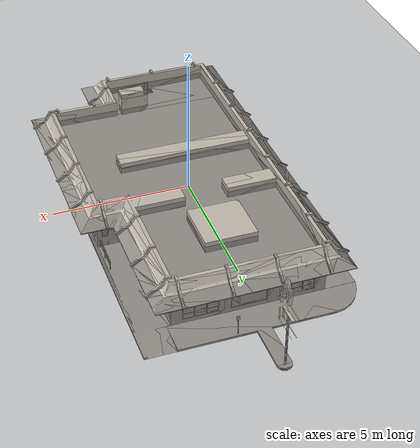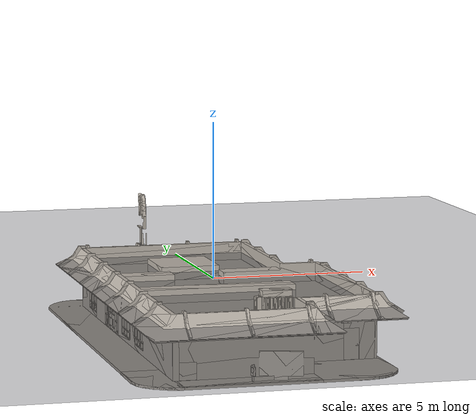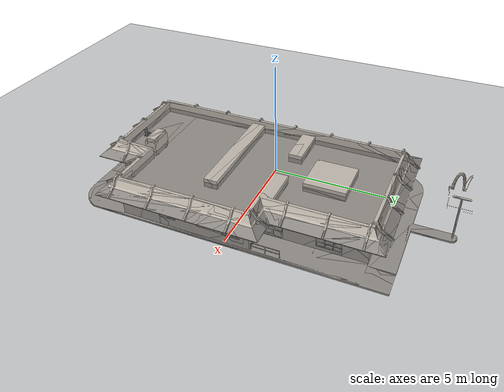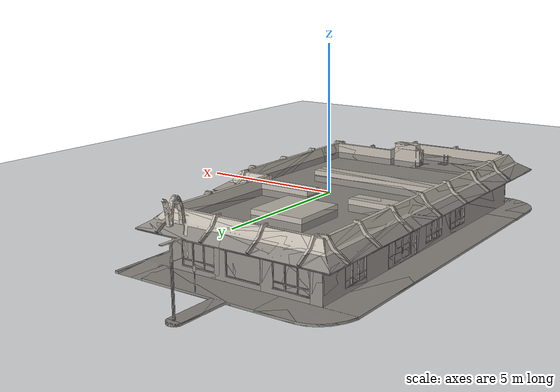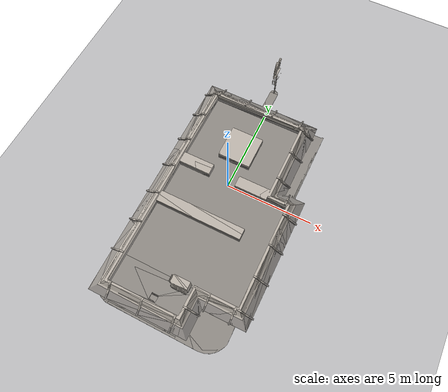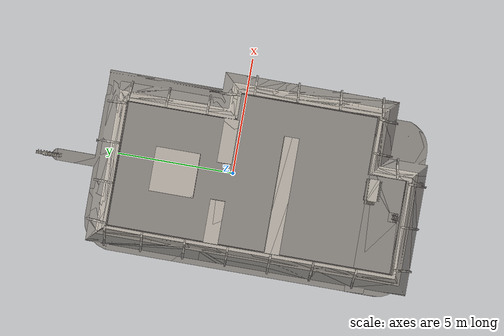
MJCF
<mujoco model="mcdonalds_restaurant_preview">
  <compiler angle="radian" meshdir="assets/mcdonalds/meshes" texturedir="assets/mcdonalds/textures"/>
  <option timestep="0.002" gravity="0 0 -9.81"/>
  <visual>
    <headlight diffuse="0.75 0.75 0.72" ambient="0.38 0.36 0.34"/>
    <rgba haze="0.05 0.05 0.05 1"/>
  </visual>
  <asset>
    <mesh name="mcd_rest_mesh00" file="mcd_rest_m00.stl"/>
    <mesh name="mcd_rest_mesh01" file="mcd_rest_m01.stl"/>
    <mesh name="mcd_rest_mesh02" file="mcd_rest_m02.obj"/>
    <texture name="mcd_rest_tex02" type="2d" file="mcd_rest_t02.png"/>
    <material name="mcd_rest_mat02" texture="mcd_rest_tex02" reflectance="0.5" specular="0.5" shininess="0.5"/>
    <mesh name="mcd_rest_mesh03" file="mcd_rest_m03.obj"/>
    <texture name="mcd_rest_tex03" type="2d" file="mcd_rest_t03.png"/>
    <material name="mcd_rest_mat03" texture="mcd_rest_tex03" reflectance="0.5" specular="0.5" shininess="0.5"/>
    <mesh name="mcd_rest_mesh04" file="mcd_rest_m04.obj"/>
    <texture name="mcd_rest_tex04" type="2d" file="mcd_rest_t04.png"/>
    <material name="mcd_rest_mat04" texture="mcd_rest_tex04" reflectance="0.5" specular="0.5" shininess="0.5"/>
    <mesh name="mcd_rest_mesh05" file="mcd_rest_m05.obj"/>
    <texture name="mcd_rest_tex05" type="2d" file="mcd_rest_t05.png"/>
    <material name="mcd_rest_mat05" texture="mcd_rest_tex05" reflectance="0.5" specular="0.5" shininess="0.5"/>
    <mesh name="mcd_rest_mesh06" file="mcd_rest_m06.obj"/>
    <texture name="mcd_rest_tex06" type="2d" file="mcd_rest_t06.png"/>
    <material name="mcd_rest_mat06" texture="mcd_rest_tex06" reflectance="0.5" specular="0.5" shininess="0.5"/>
    <mesh name="mcd_rest_mesh07" file="mcd_rest_m07.obj"/>
    <texture name="mcd_rest_tex07" type="2d" file="mcd_rest_t07.png"/>
    <material name="mcd_rest_mat07" texture="mcd_rest_tex07" reflectance="0.5" specular="0.5" shininess="0.5"/>
    <mesh name="mcd_rest_mesh08" file="mcd_rest_m08.obj"/>
    <texture name="mcd_rest_tex08" type="2d" file="mcd_rest_t08.png"/>
    <material name="mcd_rest_mat08" texture="mcd_rest_tex08" reflectance="0.5" specular="0.5" shininess="0.5"/>
    <mesh name="mcd_rest_mesh09" file="mcd_rest_m09.obj"/>
    <texture name="mcd_rest_tex09" type="2d" file="mcd_rest_t09.png"/>
    <material name="mcd_rest_mat09" texture="mcd_rest_tex09" reflectance="0.5" specular="0.5" shininess="0.5"/>
    <mesh name="mcd_rest_mesh10" file="mcd_rest_m10.obj"/>
    <texture name="mcd_rest_tex10" type="2d" file="mcd_rest_t10.png"/>
    <material name="mcd_rest_mat10" texture="mcd_rest_tex10" reflectance="0.5" specular="0.5" shininess="0.5"/>
    <mesh name="mcd_rest_mesh11" file="mcd_rest_m11.obj"/>
    <texture name="mcd_rest_tex11" type="2d" file="mcd_rest_t11.png"/>
    <material name="mcd_rest_mat11" texture="mcd_rest_tex11" reflectance="0.5" specular="0.5" shininess="0.5"/>
    <mesh name="mcd_rest_mesh12" file="mcd_rest_m12.obj"/>
    <texture name="mcd_rest_tex12" type="2d" file="mcd_rest_t12.png"/>
    <material name="mcd_rest_mat12" texture="mcd_rest_tex12" reflectance="0.5" specular="0.5" shininess="0.5"/>
    <mesh name="mcd_rest_mesh13" file="mcd_rest_m13.obj"/>
    <texture name="mcd_rest_tex13" type="2d" file="mcd_rest_t13.png"/>
    <material name="mcd_rest_mat13" texture="mcd_rest_tex13" reflectance="0.5" specular="0.5" shininess="0.5"/>
    <mesh name="mcd_rest_mesh14" file="mcd_rest_m14.obj"/>
    <texture name="mcd_rest_tex14" type="2d" file="mcd_rest_t14.png"/>
    <material name="mcd_rest_mat14" texture="mcd_rest_tex14" reflectance="0.5" specular="0.5" shininess="0.5"/>
    <mesh name="mcd_rest_mesh15" file="mcd_rest_m15.obj"/>
    <texture name="mcd_rest_tex15" type="2d" file="mcd_rest_t15.png"/>
    <material name="mcd_rest_mat15" texture="mcd_rest_tex15" reflectance="0.5" specular="0.5" shininess="0.5"/>
    <mesh name="mcd_rest_mesh16" file="mcd_rest_m16.obj"/>
    <texture name="mcd_rest_tex16" type="2d" file="mcd_rest_t16.png"/>
    <material name="mcd_rest_mat16" texture="mcd_rest_tex16" reflectance="0.5" specular="0.5" shininess="0.5"/>
    <mesh name="mcd_rest_mesh17" file="mcd_rest_m17.obj"/>
    <texture name="mcd_rest_tex17" type="2d" file="mcd_rest_t17.png"/>
    <material name="mcd_rest_mat17" texture="mcd_rest_tex17" reflectance="0.5" specular="0.5" shininess="0.5"/>
    <mesh name="mcd_rest_mesh18" file="mcd_rest_m18.obj"/>
    <texture name="mcd_rest_tex18" type="2d" file="mcd_rest_t18.png"/>
    <material name="mcd_rest_mat18" texture="mcd_rest_tex18" reflectance="0.5" specular="0.5" shininess="0.5"/>
    <mesh name="mcd_rest_mesh19" file="mcd_rest_m19.obj"/>
    <texture name="mcd_rest_tex19" type="2d" file="mcd_rest_t19.png"/>
    <material name="mcd_rest_mat19" texture="mcd_rest_tex19" reflectance="0.5" specular="0.5" shininess="0.5"/>
    <mesh name="mcd_rest_mesh20" file="mcd_rest_m20.obj"/>
    <texture name="mcd_rest_tex20" type="2d" file="mcd_rest_t20.png"/>
    <material name="mcd_rest_mat20" texture="mcd_rest_tex20" reflectance="0.5" specular="0.5" shininess="0.5"/>
    <mesh name="mcd_rest_mesh21" file="mcd_rest_m21.obj"/>
    <texture name="mcd_rest_tex21" type="2d" file="mcd_rest_t21.png"/>
    <material name="mcd_rest_mat21" texture="mcd_rest_tex21" reflectance="0.5" specular="0.5" shininess="0.5"/>
    <mesh name="mcd_rest_mesh22" file="mcd_rest_m22.obj"/>
    <texture name="mcd_rest_tex22" type="2d" file="mcd_rest_t22.png"/>
    <material name="mcd_rest_mat22" texture="mcd_rest_tex22" reflectance="0.5" specular="0.5" shininess="0.5"/>
    <mesh name="mcd_rest_mesh23" file="mcd_rest_m23.obj"/>
    <texture name="mcd_rest_tex23" type="2d" file="mcd_rest_t23.png"/>
    <material name="mcd_rest_mat23" texture="mcd_rest_tex23" reflectance="0.5" specular="0.5" shininess="0.5"/>
    <mesh name="mcd_rest_mesh24" file="mcd_rest_m24.obj"/>
    <texture name="mcd_rest_tex24" type="2d" file="mcd_rest_t24.png"/>
    <material name="mcd_rest_mat24" texture="mcd_rest_tex24" reflectance="0.5" specular="0.5" shininess="0.5"/>
    <mesh name="mcd_rest_mesh25" file="mcd_rest_m25.obj"/>
    <texture name="mcd_rest_tex25" type="2d" file="mcd_rest_t25.png"/>
    <material name="mcd_rest_mat25" texture="mcd_rest_tex25" reflectance="0.5" specular="0.5" shininess="0.5"/>
    <mesh name="mcd_rest_mesh26" file="mcd_rest_m26.obj"/>
    <texture name="mcd_rest_tex26" type="2d" file="mcd_rest_t26.png"/>
    <material name="mcd_rest_mat26" texture="mcd_rest_tex26" reflectance="0.5" specular="0.5" shininess="0.5"/>
    <mesh name="mcd_rest_mesh27" file="mcd_rest_m27.obj"/>
    <texture name="mcd_rest_tex27" type="2d" file="mcd_rest_t27.png"/>
    <material name="mcd_rest_mat27" texture="mcd_rest_tex27" reflectance="0.5" specular="0.5" shininess="0.5"/>
    <mesh name="mcd_rest_mesh28" file="mcd_rest_m28.obj"/>
    <texture name="mcd_rest_tex28" type="2d" file="mcd_rest_t28.png"/>
    <material name="mcd_rest_mat28" texture="mcd_rest_tex28" reflectance="0.5" specular="0.5" shininess="0.5"/>
    <mesh name="mcd_rest_mesh29" file="mcd_rest_m29.obj"/>
    <texture name="mcd_rest_tex29" type="2d" file="mcd_rest_t29.png"/>
    <material name="mcd_rest_mat29" texture="mcd_rest_tex29" reflectance="0.5" specular="0.5" shininess="0.5"/>
    <mesh name="mcd_rest_mesh30" file="mcd_rest_m30.obj"/>
    <texture name="mcd_rest_tex30" type="2d" file="mcd_rest_t30.png"/>
    <material name="mcd_rest_mat30" texture="mcd_rest_tex30" reflectance="0.5" specular="0.5" shininess="0.5"/>
    <mesh name="mcd_rest_mesh31" file="mcd_rest_m31.obj"/>
    <texture name="mcd_rest_tex31" type="2d" file="mcd_rest_t31.png"/>
    <material name="mcd_rest_mat31" texture="mcd_rest_tex31" reflectance="0.5" specular="0.5" shininess="0.5"/>
    <mesh name="mcd_rest_mesh32" file="mcd_rest_m32.obj"/>
    <texture name="mcd_rest_tex32" type="2d" file="mcd_rest_t32.png"/>
    <material name="mcd_rest_mat32" texture="mcd_rest_tex32" reflectance="0.5" specular="0.5" shininess="0.5"/>
    <mesh name="mcd_rest_mesh33" file="mcd_rest_m33.obj"/>
    <texture name="mcd_rest_tex33" type="2d" file="mcd_rest_t33.png"/>
    <material name="mcd_rest_mat33" texture="mcd_rest_tex33" reflectance="0.5" specular="0.5" shininess="0.5"/>
    <mesh name="mcd_rest_mesh34" file="mcd_rest_m34.obj"/>
    <texture name="mcd_rest_tex34" type="2d" file="mcd_rest_t34.png"/>
    <material name="mcd_rest_mat34" texture="mcd_rest_tex34" reflectance="0.5" specular="0.5" shininess="0.5"/>
    <mesh name="mcd_rest_mesh35" file="mcd_rest_m35.obj"/>
    <texture name="mcd_rest_tex35" type="2d" file="mcd_rest_t35.png"/>
    <material name="mcd_rest_mat35" texture="mcd_rest_tex35" reflectance="0.5" specular="0.5" shininess="0.5"/>
    <mesh name="mcd_rest_mesh36" file="mcd_rest_m36.obj"/>
    <texture name="mcd_rest_tex36" type="2d" file="mcd_rest_t36.png"/>
    <material name="mcd_rest_mat36" texture="mcd_rest_tex36" reflectance="0.5" specular="0.5" shininess="0.5"/>
    <mesh name="mcd_rest_mesh37" file="mcd_rest_m37.obj"/>
    <texture name="mcd_rest_tex37" type="2d" file="mcd_rest_t37.png"/>
    <material name="mcd_rest_mat37" texture="mcd_rest_tex37" reflectance="0.5" specular="0.5" shininess="0.5"/>
    <mesh name="mcd_rest_mesh38" file="mcd_rest_m38.obj"/>
    <texture name="mcd_rest_tex38" type="2d" file="mcd_rest_t38.png"/>
    <material name="mcd_rest_mat38" texture="mcd_rest_tex38" reflectance="0.5" specular="0.5" shininess="0.5"/>
    <mesh name="mcd_rest_mesh39" file="mcd_rest_m39.obj"/>
    <texture name="mcd_rest_tex39" type="2d" file="mcd_rest_t39.png"/>
    <material name="mcd_rest_mat39" texture="mcd_rest_tex39" reflectance="0.5" specular="0.5" shininess="0.5"/>
    <mesh name="mcd_rest_mesh40" file="mcd_rest_m40.obj"/>
    <texture name="mcd_rest_tex40" type="2d" file="mcd_rest_t40.png"/>
    <material name="mcd_rest_mat40" texture="mcd_rest_tex40" reflectance="0.5" specular="0.5" shininess="0.5"/>
    <mesh name="mcd_rest_mesh41" file="mcd_rest_m41.obj"/>
    <texture name="mcd_rest_tex41" type="2d" file="mcd_rest_t41.png"/>
    <material name="mcd_rest_mat41" texture="mcd_rest_tex41" reflectance="0.5" specular="0.5" shininess="0.5"/>
    <mesh name="mcd_rest_mesh42" file="mcd_rest_m42.obj"/>
    <texture name="mcd_rest_tex42" type="2d" file="mcd_rest_t42.png"/>
    <material name="mcd_rest_mat42" texture="mcd_rest_tex42" reflectance="0.5" specular="0.5" shininess="0.5"/>
    <mesh name="mcd_rest_mesh43" file="mcd_rest_m43.obj"/>
    <texture name="mcd_rest_tex43" type="2d" file="mcd_rest_t43.png"/>
    <material name="mcd_rest_mat43" texture="mcd_rest_tex43" reflectance="0.5" specular="0.5" shininess="0.5"/>
    <mesh name="mcd_rest_mesh44" file="mcd_rest_m44.obj"/>
    <texture name="mcd_rest_tex44" type="2d" file="mcd_rest_t44.png"/>
    <material name="mcd_rest_mat44" texture="mcd_rest_tex44" reflectance="0.5" specular="0.5" shininess="0.5"/>
    <mesh name="mcd_rest_mesh45" file="mcd_rest_m45.obj"/>
    <texture name="mcd_rest_tex45" type="2d" file="mcd_rest_t45.png"/>
    <material name="mcd_rest_mat45" texture="mcd_rest_tex45" reflectance="0.5" specular="0.5" shininess="0.5"/>
    <mesh name="mcd_rest_mesh46" file="mcd_rest_m46.obj"/>
    <texture name="mcd_rest_tex46" type="2d" file="mcd_rest_t46.png"/>
    <material name="mcd_rest_mat46" texture="mcd_rest_tex46" reflectance="0.5" specular="0.5" shininess="0.5"/>
    <mesh name="mcd_rest_mesh47" file="mcd_rest_m47.obj"/>
    <texture name="mcd_rest_tex47" type="2d" file="mcd_rest_t47.png"/>
    <material name="mcd_rest_mat47" texture="mcd_rest_tex47" reflectance="0.5" specular="0.5" shininess="0.5"/>
    <mesh name="mcd_rest_mesh48" file="mcd_rest_m48.obj"/>
    <texture name="mcd_rest_tex48" type="2d" file="mcd_rest_t48.png"/>
    <material name="mcd_rest_mat48" texture="mcd_rest_tex48" reflectance="0.5" specular="0.5" shininess="0.5"/>
    <mesh name="mcd_rest_mesh49" file="mcd_rest_m49.obj"/>
    <texture name="mcd_rest_tex49" type="2d" file="mcd_rest_t49.png"/>
    <material name="mcd_rest_mat49" texture="mcd_rest_tex49" reflectance="0.5" specular="0.5" shininess="0.5"/>
    <mesh name="mcd_rest_mesh50" file="mcd_rest_m50.obj"/>
    <texture name="mcd_rest_tex50" type="2d" file="mcd_rest_t50.png"/>
    <material name="mcd_rest_mat50" texture="mcd_rest_tex50" reflectance="0.5" specular="0.5" shininess="0.5"/>
    <mesh name="mcd_rest_mesh51" file="mcd_rest_m51.obj"/>
    <texture name="mcd_rest_tex51" type="2d" file="mcd_rest_t51.png"/>
    <material name="mcd_rest_mat51" texture="mcd_rest_tex51" reflectance="0.5" specular="0.5" shininess="0.5"/>
    <mesh name="mcd_rest_mesh52" file="mcd_rest_m52.obj"/>
    <texture name="mcd_rest_tex52" type="2d" file="mcd_rest_t52.png"/>
    <material name="mcd_rest_mat52" texture="mcd_rest_tex52" reflectance="0.5" specular="0.5" shininess="0.5"/>
    <mesh name="mcd_rest_mesh53" file="mcd_rest_m53.obj"/>
    <texture name="mcd_rest_tex53" type="2d" file="mcd_rest_t53.png"/>
    <material name="mcd_rest_mat53" texture="mcd_rest_tex53" reflectance="0.5" specular="0.5" shininess="0.5"/>
    <mesh name="mcd_rest_mesh54" file="mcd_rest_m54.obj"/>
    <texture name="mcd_rest_tex54" type="2d" file="mcd_rest_t54.png"/>
    <material name="mcd_rest_mat54" texture="mcd_rest_tex54" reflectance="0.5" specular="0.5" shininess="0.5"/>
    <mesh name="mcd_rest_mesh55" file="mcd_rest_m55.obj"/>
    <texture name="mcd_rest_tex55" type="2d" file="mcd_rest_t55.png"/>
    <material name="mcd_rest_mat55" texture="mcd_rest_tex55" reflectance="0.5" specular="0.5" shininess="0.5"/>
    <mesh name="mcd_rest_mesh56" file="mcd_rest_m56.obj"/>
    <texture name="mcd_rest_tex56" type="2d" file="mcd_rest_t56.png"/>
    <material name="mcd_rest_mat56" texture="mcd_rest_tex56" reflectance="0.5" specular="0.5" shininess="0.5"/>
    <mesh name="mcd_rest_mesh57" file="mcd_rest_m57.obj"/>
    <texture name="mcd_rest_tex57" type="2d" file="mcd_rest_t57.png"/>
    <material name="mcd_rest_mat57" texture="mcd_rest_tex57" reflectance="0.5" specular="0.5" shininess="0.5"/>
    <mesh name="mcd_rest_mesh58" file="mcd_rest_m58.obj"/>
    <texture name="mcd_rest_tex58" type="2d" file="mcd_rest_t58.png"/>
    <material name="mcd_rest_mat58" texture="mcd_rest_tex58" reflectance="0.5" specular="0.5" shininess="0.5"/>
    <mesh name="mcd_rest_mesh59" file="mcd_rest_m59.obj"/>
    <texture name="mcd_rest_tex59" type="2d" file="mcd_rest_t59.png"/>
    <material name="mcd_rest_mat59" texture="mcd_rest_tex59" reflectance="0.5" specular="0.5" shininess="0.5"/>
    <mesh name="mcd_rest_mesh60" file="mcd_rest_m60.obj"/>
    <texture name="mcd_rest_tex60" type="2d" file="mcd_rest_t60.png"/>
    <material name="mcd_rest_mat60" texture="mcd_rest_tex60" reflectance="0.5" specular="0.5" shininess="0.5"/>
    <mesh name="mcd_rest_mesh61" file="mcd_rest_m61.obj"/>
    <texture name="mcd_rest_tex61" type="2d" file="mcd_rest_t61.png"/>
    <material name="mcd_rest_mat61" texture="mcd_rest_tex61" reflectance="0.5" specular="0.5" shininess="0.5"/>
    <mesh name="mcd_rest_mesh62" file="mcd_rest_m62.obj"/>
    <texture name="mcd_rest_tex62" type="2d" file="mcd_rest_t62.png"/>
    <material name="mcd_rest_mat62" texture="mcd_rest_tex62" reflectance="0.5" specular="0.5" shininess="0.5"/>
    <mesh name="mcd_rest_mesh63" file="mcd_rest_m63.obj"/>
    <texture name="mcd_rest_tex63" type="2d" file="mcd_rest_t63.png"/>
    <material name="mcd_rest_mat63" texture="mcd_rest_tex63" reflectance="0.5" specular="0.5" shininess="0.5"/>
    <mesh name="mcd_rest_mesh64" file="mcd_rest_m64.obj"/>
    <texture name="mcd_rest_tex64" type="2d" file="mcd_rest_t64.png"/>
    <material name="mcd_rest_mat64" texture="mcd_rest_tex64" reflectance="0.5" specular="0.5" shininess="0.5"/>
    <mesh name="mcd_rest_mesh65" file="mcd_rest_m65.obj"/>
    <texture name="mcd_rest_tex65" type="2d" file="mcd_rest_t65.png"/>
    <material name="mcd_rest_mat65" texture="mcd_rest_tex65" reflectance="0.5" specular="0.5" shininess="0.5"/>
    <mesh name="mcd_rest_mesh66" file="mcd_rest_m66.obj"/>
    <texture name="mcd_rest_tex66" type="2d" file="mcd_rest_t66.png"/>
    <material name="mcd_rest_mat66" texture="mcd_rest_tex66" reflectance="0.5" specular="0.5" shininess="0.5"/>
    <mesh name="mcd_rest_mesh67" file="mcd_rest_m67.obj"/>
    <texture name="mcd_rest_tex67" type="2d" file="mcd_rest_t67.png"/>
    <material name="mcd_rest_mat67" texture="mcd_rest_tex67" reflectance="0.5" specular="0.5" shininess="0.5"/>
    <mesh name="mcd_rest_mesh68" file="mcd_rest_m68.obj"/>
    <texture name="mcd_rest_tex68" type="2d" file="mcd_rest_t68.png"/>
    <material name="mcd_rest_mat68" texture="mcd_rest_tex68" reflectance="0.5" specular="0.5" shininess="0.5"/>
    <mesh name="mcd_rest_mesh69" file="mcd_rest_m69.obj"/>
    <texture name="mcd_rest_tex69" type="2d" file="mcd_rest_t69.png"/>
    <material name="mcd_rest_mat69" texture="mcd_rest_tex69" reflectance="0.5" specular="0.5" shininess="0.5"/>
    <mesh name="mcd_rest_mesh70" file="mcd_rest_m70.obj"/>
    <texture name="mcd_rest_tex70" type="2d" file="mcd_rest_t70.png"/>
    <material name="mcd_rest_mat70" texture="mcd_rest_tex70" reflectance="0.5" specular="0.5" shininess="0.5"/>
    <mesh name="mcd_rest_mesh71" file="mcd_rest_m71.obj"/>
    <texture name="mcd_rest_tex71" type="2d" file="mcd_rest_t71.png"/>
    <material name="mcd_rest_mat71" texture="mcd_rest_tex71" reflectance="0.5" specular="0.5" shininess="0.5"/>
    <mesh name="mcd_rest_mesh72" file="mcd_rest_m72.obj"/>
    <texture name="mcd_rest_tex72" type="2d" file="mcd_rest_t72.png"/>
    <material name="mcd_rest_mat72" texture="mcd_rest_tex72" reflectance="0.5" specular="0.5" shininess="0.5"/>
    <mesh name="mcd_rest_mesh73" file="mcd_rest_m73.obj"/>
    <texture name="mcd_rest_tex73" type="2d" file="mcd_rest_t73.png"/>
    <material name="mcd_rest_mat73" texture="mcd_rest_tex73" reflectance="0.5" specular="0.5" shininess="0.5"/>
    <mesh name="mcd_rest_mesh74" file="mcd_rest_m74.obj"/>
    <texture name="mcd_rest_tex74" type="2d" file="mcd_rest_t74.png"/>
    <material name="mcd_rest_mat74" texture="mcd_rest_tex74" reflectance="0.5" specular="0.5" shininess="0.5"/>
    <mesh name="mcd_rest_mesh75" file="mcd_rest_m75.obj"/>
    <texture name="mcd_rest_tex75" type="2d" file="mcd_rest_t75.png"/>
    <material name="mcd_rest_mat75" texture="mcd_rest_tex75" reflectance="0.5" specular="0.5" shininess="0.5"/>
    <mesh name="mcd_rest_mesh76" file="mcd_rest_m76.obj"/>
    <texture name="mcd_rest_tex76" type="2d" file="mcd_rest_t76.png"/>
    <material name="mcd_rest_mat76" texture="mcd_rest_tex76" reflectance="0.5" specular="0.5" shininess="0.5"/>
    <mesh name="mcd_rest_mesh77" file="mcd_rest_m77.obj"/>
    <texture name="mcd_rest_tex77" type="2d" file="mcd_rest_t77.png"/>
    <material name="mcd_rest_mat77" texture="mcd_rest_tex77" reflectance="0.5" specular="0.5" shininess="0.5"/>
    <mesh name="mcd_rest_mesh78" file="mcd_rest_m78.obj"/>
    <texture name="mcd_rest_tex78" type="2d" file="mcd_rest_t78.png"/>
    <material name="mcd_rest_mat78" texture="mcd_rest_tex78" reflectance="0.5" specular="0.5" shininess="0.5"/>
    <mesh name="mcd_rest_mesh79" file="mcd_rest_m79.obj"/>
    <texture name="mcd_rest_tex79" type="2d" file="mcd_rest_t79.png"/>
    <material name="mcd_rest_mat79" texture="mcd_rest_tex79" reflectance="0.5" specular="0.5" shininess="0.5"/>
    <mesh name="mcd_rest_mesh80" file="mcd_rest_m80.obj"/>
    <texture name="mcd_rest_tex80" type="2d" file="mcd_rest_t80.png"/>
    <material name="mcd_rest_mat80" texture="mcd_rest_tex80" reflectance="0.5" specular="0.5" shininess="0.5"/>
    <mesh name="mcd_rest_mesh81" file="mcd_rest_m81.obj"/>
    <texture name="mcd_rest_tex81" type="2d" file="mcd_rest_t81.png"/>
    <material name="mcd_rest_mat81" texture="mcd_rest_tex81" reflectance="0.5" specular="0.5" shininess="0.5"/>
    <mesh name="mcd_rest_mesh82" file="mcd_rest_m82.obj"/>
    <texture name="mcd_rest_tex82" type="2d" file="mcd_rest_t82.png"/>
    <material name="mcd_rest_mat82" texture="mcd_rest_tex82" reflectance="0.5" specular="0.5" shininess="0.5"/>
    <mesh name="mcd_rest_mesh83" file="mcd_rest_m83.obj"/>
    <texture name="mcd_rest_tex83" type="2d" file="mcd_rest_t83.png"/>
    <material name="mcd_rest_mat83" texture="mcd_rest_tex83" reflectance="0.5" specular="0.5" shininess="0.5"/>
    <mesh name="mcd_rest_mesh84" file="mcd_rest_m84.obj"/>
    <texture name="mcd_rest_tex84" type="2d" file="mcd_rest_t84.png"/>
    <material name="mcd_rest_mat84" texture="mcd_rest_tex84" reflectance="0.5" specular="0.5" shininess="0.5"/>
    <mesh name="mcd_rest_mesh85" file="mcd_rest_m85.obj"/>
    <texture name="mcd_rest_tex85" type="2d" file="mcd_rest_t85.png"/>
    <material name="mcd_rest_mat85" texture="mcd_rest_tex85" reflectance="0.5" specular="0.5" shininess="0.5"/>
    <mesh name="mcd_rest_mesh86" file="mcd_rest_m86.obj"/>
    <texture name="mcd_rest_tex86" type="2d" file="mcd_rest_t86.png"/>
    <material name="mcd_rest_mat86" texture="mcd_rest_tex86" reflectance="0.5" specular="0.5" shininess="0.5"/>
    <mesh name="mcd_rest_mesh87" file="mcd_rest_m87.obj"/>
    <texture name="mcd_rest_tex87" type="2d" file="mcd_rest_t87.png"/>
    <material name="mcd_rest_mat87" texture="mcd_rest_tex87" reflectance="0.5" specular="0.5" shininess="0.5"/>
    <mesh name="mcd_rest_mesh88" file="mcd_rest_m88.obj"/>
    <texture name="mcd_rest_tex88" type="2d" file="mcd_rest_t88.png"/>
    <material name="mcd_rest_mat88" texture="mcd_rest_tex88" reflectance="0.5" specular="0.5" shininess="0.5"/>
    <mesh name="mcd_rest_mesh89" file="mcd_rest_m89.obj"/>
    <texture name="mcd_rest_tex89" type="2d" file="mcd_rest_t89.png"/>
    <material name="mcd_rest_mat89" texture="mcd_rest_tex89" reflectance="0.5" specular="0.5" shininess="0.5"/>
    <mesh name="mcd_rest_mesh90" file="mcd_rest_m90.obj"/>
    <texture name="mcd_rest_tex90" type="2d" file="mcd_rest_t90.png"/>
    <material name="mcd_rest_mat90" texture="mcd_rest_tex90" reflectance="0.5" specular="0.5" shininess="0.5"/>
    <mesh name="mcd_rest_mesh91" file="mcd_rest_m91.obj"/>
    <texture name="mcd_rest_tex91" type="2d" file="mcd_rest_t91.png"/>
    <material name="mcd_rest_mat91" texture="mcd_rest_tex91" reflectance="0.5" specular="0.5" shininess="0.5"/>
    <mesh name="mcd_rest_mesh92" file="mcd_rest_m92.obj"/>
    <texture name="mcd_rest_tex92" type="2d" file="mcd_rest_t92.png"/>
    <material name="mcd_rest_mat92" texture="mcd_rest_tex92" reflectance="0.5" specular="0.5" shininess="0.5"/>
    <mesh name="mcd_rest_mesh93" file="mcd_rest_m93.obj"/>
    <texture name="mcd_rest_tex93" type="2d" file="mcd_rest_t93.png"/>
    <material name="mcd_rest_mat93" texture="mcd_rest_tex93" reflectance="0.5" specular="0.5" shininess="0.5"/>
    <mesh name="mcd_rest_mesh94" file="mcd_rest_m94.obj"/>
    <texture name="mcd_rest_tex94" type="2d" file="mcd_rest_t94.png"/>
    <material name="mcd_rest_mat94" texture="mcd_rest_tex94" reflectance="0.5" specular="0.5" shininess="0.5"/>
    <mesh name="mcd_rest_mesh95" file="mcd_rest_m95.obj"/>
    <texture name="mcd_rest_tex95" type="2d" file="mcd_rest_t95.png"/>
    <material name="mcd_rest_mat95" texture="mcd_rest_tex95" reflectance="0.5" specular="0.5" shininess="0.5"/>
    <mesh name="mcd_rest_mesh96" file="mcd_rest_m96.obj"/>
    <texture name="mcd_rest_tex96" type="2d" file="mcd_rest_t96.png"/>
    <material name="mcd_rest_mat96" texture="mcd_rest_tex96" reflectance="0.5" specular="0.5" shininess="0.5"/>
    <mesh name="mcd_rest_mesh97" file="mcd_rest_m97.obj"/>
    <texture name="mcd_rest_tex97" type="2d" file="mcd_rest_t97.png"/>
    <material name="mcd_rest_mat97" texture="mcd_rest_tex97" reflectance="0.5" specular="0.5" shininess="0.5"/>
    <mesh name="mcd_rest_mesh98" file="mcd_rest_m98.obj"/>
    <texture name="mcd_rest_tex98" type="2d" file="mcd_rest_t98.png"/>
    <material name="mcd_rest_mat98" texture="mcd_rest_tex98" reflectance="0.5" specular="0.5" shininess="0.5"/>
    <mesh name="mcd_rest_mesh99" file="mcd_rest_m99.obj"/>
    <texture name="mcd_rest_tex99" type="2d" file="mcd_rest_t99.png"/>
    <material name="mcd_rest_mat99" texture="mcd_rest_tex99" reflectance="0.5" specular="0.5" shininess="0.5"/>
    <mesh name="mcd_rest_mesh100" file="mcd_rest_m100.obj"/>
    <texture name="mcd_rest_tex100" type="2d" file="mcd_rest_t100.png"/>
    <material name="mcd_rest_mat100" texture="mcd_rest_tex100" reflectance="0.5" specular="0.5" shininess="0.5"/>
    <mesh name="mcd_rest_mesh101" file="mcd_rest_m101.obj"/>
    <texture name="mcd_rest_tex101" type="2d" file="mcd_rest_t101.png"/>
    <material name="mcd_rest_mat101" texture="mcd_rest_tex101" reflectance="0.5" specular="0.5" shininess="0.5"/>
  </asset>
  <worldbody>
    <geom name="mcd_ground" type="plane" pos="0 0 0" size="60 60 0.01" rgba="0.18 0.19 0.22 1" contype="0" conaffinity="0"/>
    <light name="mcd_sun" pos="8 8 12" dir="-0.3 -0.3 -1" directional="true" diffuse="0.92 0.9 0.85" specular="0.35 0.35 0.32"/>
    <body name="mcd_rest_root" pos="0.0 0.0 0.0">
      <geom name="mcd_rest_g00" type="mesh" mesh="mcd_rest_mesh00" rgba="1 1 1 0" contype="0" conaffinity="0"/>
      <geom name="mcd_rest_g01" type="mesh" mesh="mcd_rest_mesh01" rgba="1 1 1 0" contype="0" conaffinity="0"/>
      <geom name="mcd_rest_g02" type="mesh" mesh="mcd_rest_mesh02" material="mcd_rest_mat02" contype="0" conaffinity="0"/>
      <geom name="mcd_rest_g03" type="mesh" mesh="mcd_rest_mesh03" material="mcd_rest_mat03" contype="0" conaffinity="0"/>
      <geom name="mcd_rest_g04" type="mesh" mesh="mcd_rest_mesh04" material="mcd_rest_mat04" contype="0" conaffinity="0"/>
      <geom name="mcd_rest_g05" type="mesh" mesh="mcd_rest_mesh05" material="mcd_rest_mat05" contype="0" conaffinity="0"/>
      <geom name="mcd_rest_g06" type="mesh" mesh="mcd_rest_mesh06" material="mcd_rest_mat06" contype="0" conaffinity="0"/>
      <geom name="mcd_rest_g07" type="mesh" mesh="mcd_rest_mesh07" material="mcd_rest_mat07" contype="0" conaffinity="0"/>
      <geom name="mcd_rest_g08" type="mesh" mesh="mcd_rest_mesh08" material="mcd_rest_mat08" contype="0" conaffinity="0"/>
      <geom name="mcd_rest_g09" type="mesh" mesh="mcd_rest_mesh09" material="mcd_rest_mat09" contype="0" conaffinity="0"/>
      <geom name="mcd_rest_g10" type="mesh" mesh="mcd_rest_mesh10" material="mcd_rest_mat10" contype="0" conaffinity="0"/>
      <geom name="mcd_rest_g11" type="mesh" mesh="mcd_rest_mesh11" material="mcd_rest_mat11" contype="0" conaffinity="0"/>
      <geom name="mcd_rest_g12" type="mesh" mesh="mcd_rest_mesh12" material="mcd_rest_mat12" contype="0" conaffinity="0"/>
      <geom name="mcd_rest_g13" type="mesh" mesh="mcd_rest_mesh13" material="mcd_rest_mat13" contype="0" conaffinity="0"/>
      <geom name="mcd_rest_g14" type="mesh" mesh="mcd_rest_mesh14" material="mcd_rest_mat14" contype="0" conaffinity="0"/>
      <geom name="mcd_rest_g15" type="mesh" mesh="mcd_rest_mesh15" material="mcd_rest_mat15" contype="0" conaffinity="0"/>
      <geom name="mcd_rest_g16" type="mesh" mesh="mcd_rest_mesh16" material="mcd_rest_mat16" contype="0" conaffinity="0"/>
      <geom name="mcd_rest_g17" type="mesh" mesh="mcd_rest_mesh17" material="mcd_rest_mat17" contype="0" conaffinity="0"/>
      <geom name="mcd_rest_g18" type="mesh" mesh="mcd_rest_mesh18" material="mcd_rest_mat18" contype="0" conaffinity="0"/>
      <geom name="mcd_rest_g19" type="mesh" mesh="mcd_rest_mesh19" material="mcd_rest_mat19" contype="0" conaffinity="0"/>
      <geom name="mcd_rest_g20" type="mesh" mesh="mcd_rest_mesh20" material="mcd_rest_mat20" contype="0" conaffinity="0"/>
      <geom name="mcd_rest_g21" type="mesh" mesh="mcd_rest_mesh21" material="mcd_rest_mat21" contype="0" conaffinity="0"/>
      <geom name="mcd_rest_g22" type="mesh" mesh="mcd_rest_mesh22" material="mcd_rest_mat22" contype="0" conaffinity="0"/>
      <geom name="mcd_rest_g23" type="mesh" mesh="mcd_rest_mesh23" material="mcd_rest_mat23" contype="0" conaffinity="0"/>
      <geom name="mcd_rest_g24" type="mesh" mesh="mcd_rest_mesh24" material="mcd_rest_mat24" contype="0" conaffinity="0"/>
      <geom name="mcd_rest_g25" type="mesh" mesh="mcd_rest_mesh25" material="mcd_rest_mat25" contype="0" conaffinity="0"/>
      <geom name="mcd_rest_g26" type="mesh" mesh="mcd_rest_mesh26" material="mcd_rest_mat26" contype="0" conaffinity="0"/>
      <geom name="mcd_rest_g27" type="mesh" mesh="mcd_rest_mesh27" material="mcd_rest_mat27" contype="0" conaffinity="0"/>
      <geom name="mcd_rest_g28" type="mesh" mesh="mcd_rest_mesh28" material="mcd_rest_mat28" contype="0" conaffinity="0"/>
      <geom name="mcd_rest_g29" type="mesh" mesh="mcd_rest_mesh29" material="mcd_rest_mat29" contype="0" conaffinity="0"/>
      <geom name="mcd_rest_g30" type="mesh" mesh="mcd_rest_mesh30" material="mcd_rest_mat30" contype="0" conaffinity="0"/>
      <geom name="mcd_rest_g31" type="mesh" mesh="mcd_rest_mesh31" material="mcd_rest_mat31" contype="0" conaffinity="0"/>
      <geom name="mcd_rest_g32" type="mesh" mesh="mcd_rest_mesh32" material="mcd_rest_mat32" contype="0" conaffinity="0"/>
      <geom name="mcd_rest_g33" type="mesh" mesh="mcd_rest_mesh33" material="mcd_rest_mat33" contype="0" conaffinity="0"/>
      <geom name="mcd_rest_g34" type="mesh" mesh="mcd_rest_mesh34" material="mcd_rest_mat34" contype="0" conaffinity="0"/>
      <geom name="mcd_rest_g35" type="mesh" mesh="mcd_rest_mesh35" material="mcd_rest_mat35" contype="0" conaffinity="0"/>
      <geom name="mcd_rest_g36" type="mesh" mesh="mcd_rest_mesh36" material="mcd_rest_mat36" contype="0" conaffinity="0"/>
      <geom name="mcd_rest_g37" type="mesh" mesh="mcd_rest_mesh37" material="mcd_rest_mat37" contype="0" conaffinity="0"/>
      <geom name="mcd_rest_g38" type="mesh" mesh="mcd_rest_mesh38" material="mcd_rest_mat38" contype="0" conaffinity="0"/>
      <geom name="mcd_rest_g39" type="mesh" mesh="mcd_rest_mesh39" material="mcd_rest_mat39" contype="0" conaffinity="0"/>
      <geom name="mcd_rest_g40" type="mesh" mesh="mcd_rest_mesh40" material="mcd_rest_mat40" contype="0" conaffinity="0"/>
      <geom name="mcd_rest_g41" type="mesh" mesh="mcd_rest_mesh41" material="mcd_rest_mat41" contype="0" conaffinity="0"/>
      <geom name="mcd_rest_g42" type="mesh" mesh="mcd_rest_mesh42" material="mcd_rest_mat42" contype="0" conaffinity="0"/>
      <geom name="mcd_rest_g43" type="mesh" mesh="mcd_rest_mesh43" material="mcd_rest_mat43" contype="0" conaffinity="0"/>
      <geom name="mcd_rest_g44" type="mesh" mesh="mcd_rest_mesh44" material="mcd_rest_mat44" contype="0" conaffinity="0"/>
      <geom name="mcd_rest_g45" type="mesh" mesh="mcd_rest_mesh45" material="mcd_rest_mat45" contype="0" conaffinity="0"/>
      <geom name="mcd_rest_g46" type="mesh" mesh="mcd_rest_mesh46" material="mcd_rest_mat46" contype="0" conaffinity="0"/>
      <geom name="mcd_rest_g47" type="mesh" mesh="mcd_rest_mesh47" material="mcd_rest_mat47" contype="0" conaffinity="0"/>
      <geom name="mcd_rest_g48" type="mesh" mesh="mcd_rest_mesh48" material="mcd_rest_mat48" contype="0" conaffinity="0"/>
      <geom name="mcd_rest_g49" type="mesh" mesh="mcd_rest_mesh49" material="mcd_rest_mat49" contype="0" conaffinity="0"/>
      <geom name="mcd_rest_g50" type="mesh" mesh="mcd_rest_mesh50" material="mcd_rest_mat50" contype="0" conaffinity="0"/>
      <geom name="mcd_rest_g51" type="mesh" mesh="mcd_rest_mesh51" material="mcd_rest_mat51" contype="0" conaffinity="0"/>
      <geom name="mcd_rest_g52" type="mesh" mesh="mcd_rest_mesh52" material="mcd_rest_mat52" contype="0" conaffinity="0"/>
      <geom name="mcd_rest_g53" type="mesh" mesh="mcd_rest_mesh53" material="mcd_rest_mat53" contype="0" conaffinity="0"/>
      <geom name="mcd_rest_g54" type="mesh" mesh="mcd_rest_mesh54" material="mcd_rest_mat54" contype="0" conaffinity="0"/>
      <geom name="mcd_rest_g55" type="mesh" mesh="mcd_rest_mesh55" material="mcd_rest_mat55" contype="0" conaffinity="0"/>
      <geom name="mcd_rest_g56" type="mesh" mesh="mcd_rest_mesh56" material="mcd_rest_mat56" contype="0" conaffinity="0"/>
      <geom name="mcd_rest_g57" type="mesh" mesh="mcd_rest_mesh57" material="mcd_rest_mat57" contype="0" conaffinity="0"/>
      <geom name="mcd_rest_g58" type="mesh" mesh="mcd_rest_mesh58" material="mcd_rest_mat58" contype="0" conaffinity="0"/>
      <geom name="mcd_rest_g59" type="mesh" mesh="mcd_rest_mesh59" material="mcd_rest_mat59" contype="0" conaffinity="0"/>
      <geom name="mcd_rest_g60" type="mesh" mesh="mcd_rest_mesh60" material="mcd_rest_mat60" contype="0" conaffinity="0"/>
      <geom name="mcd_rest_g61" type="mesh" mesh="mcd_rest_mesh61" material="mcd_rest_mat61" contype="0" conaffinity="0"/>
      <geom name="mcd_rest_g62" type="mesh" mesh="mcd_rest_mesh62" material="mcd_rest_mat62" contype="0" conaffinity="0"/>
      <geom name="mcd_rest_g63" type="mesh" mesh="mcd_rest_mesh63" material="mcd_rest_mat63" contype="0" conaffinity="0"/>
      <geom name="mcd_rest_g64" type="mesh" mesh="mcd_rest_mesh64" material="mcd_rest_mat64" contype="0" conaffinity="0"/>
      <geom name="mcd_rest_g65" type="mesh" mesh="mcd_rest_mesh65" material="mcd_rest_mat65" contype="0" conaffinity="0"/>
      <geom name="mcd_rest_g66" type="mesh" mesh="mcd_rest_mesh66" material="mcd_rest_mat66" contype="0" conaffinity="0"/>
      <geom name="mcd_rest_g67" type="mesh" mesh="mcd_rest_mesh67" material="mcd_rest_mat67" contype="0" conaffinity="0"/>
      <geom name="mcd_rest_g68" type="mesh" mesh="mcd_rest_mesh68" material="mcd_rest_mat68" contype="0" conaffinity="0"/>
      <geom name="mcd_rest_g69" type="mesh" mesh="mcd_rest_mesh69" material="mcd_rest_mat69" contype="0" conaffinity="0"/>
      <geom name="mcd_rest_g70" type="mesh" mesh="mcd_rest_mesh70" material="mcd_rest_mat70" contype="0" conaffinity="0"/>
      <geom name="mcd_rest_g71" type="mesh" mesh="mcd_rest_mesh71" material="mcd_rest_mat71" contype="0" conaffinity="0"/>
      <geom name="mcd_rest_g72" type="mesh" mesh="mcd_rest_mesh72" material="mcd_rest_mat72" contype="0" conaffinity="0"/>
      <geom name="mcd_rest_g73" type="mesh" mesh="mcd_rest_mesh73" material="mcd_rest_mat73" contype="0" conaffinity="0"/>
      <geom name="mcd_rest_g74" type="mesh" mesh="mcd_rest_mesh74" material="mcd_rest_mat74" contype="0" conaffinity="0"/>
      <geom name="mcd_rest_g75" type="mesh" mesh="mcd_rest_mesh75" material="mcd_rest_mat75" contype="0" conaffinity="0"/>
      <geom name="mcd_rest_g76" type="mesh" mesh="mcd_rest_mesh76" material="mcd_rest_mat76" contype="0" conaffinity="0"/>
      <geom name="mcd_rest_g77" type="mesh" mesh="mcd_rest_mesh77" material="mcd_rest_mat77" contype="0" conaffinity="0"/>
      <geom name="mcd_rest_g78" type="mesh" mesh="mcd_rest_mesh78" material="mcd_rest_mat78" contype="0" conaffinity="0"/>
      <geom name="mcd_rest_g79" type="mesh" mesh="mcd_rest_mesh79" material="mcd_rest_mat79" contype="0" conaffinity="0"/>
      <geom name="mcd_rest_g80" type="mesh" mesh="mcd_rest_mesh80" material="mcd_rest_mat80" contype="0" conaffinity="0"/>
      <geom name="mcd_rest_g81" type="mesh" mesh="mcd_rest_mesh81" material="mcd_rest_mat81" contype="0" conaffinity="0"/>
      <geom name="mcd_rest_g82" type="mesh" mesh="mcd_rest_mesh82" material="mcd_rest_mat82" contype="0" conaffinity="0"/>
      <geom name="mcd_rest_g83" type="mesh" mesh="mcd_rest_mesh83" material="mcd_rest_mat83" contype="0" conaffinity="0"/>
      <geom name="mcd_rest_g84" type="mesh" mesh="mcd_rest_mesh84" material="mcd_rest_mat84" contype="0" conaffinity="0"/>
      <geom name="mcd_rest_g85" type="mesh" mesh="mcd_rest_mesh85" material="mcd_rest_mat85" contype="0" conaffinity="0"/>
      <geom name="mcd_rest_g86" type="mesh" mesh="mcd_rest_mesh86" material="mcd_rest_mat86" contype="0" conaffinity="0"/>
      <geom name="mcd_rest_g87" type="mesh" mesh="mcd_rest_mesh87" material="mcd_rest_mat87" contype="0" conaffinity="0"/>
      <geom name="mcd_rest_g88" type="mesh" mesh="mcd_rest_mesh88" material="mcd_rest_mat88" contype="0" conaffinity="0"/>
      <geom name="mcd_rest_g89" type="mesh" mesh="mcd_rest_mesh89" material="mcd_rest_mat89" contype="0" conaffinity="0"/>
      <geom name="mcd_rest_g90" type="mesh" mesh="mcd_rest_mesh90" material="mcd_rest_mat90" contype="0" conaffinity="0"/>
      <geom name="mcd_rest_g91" type="mesh" mesh="mcd_rest_mesh91" material="mcd_rest_mat91" contype="0" conaffinity="0"/>
      <geom name="mcd_rest_g92" type="mesh" mesh="mcd_rest_mesh92" material="mcd_rest_mat92" contype="0" conaffinity="0"/>
      <geom name="mcd_rest_g93" type="mesh" mesh="mcd_rest_mesh93" material="mcd_rest_mat93" contype="0" conaffinity="0"/>
      <geom name="mcd_rest_g94" type="mesh" mesh="mcd_rest_mesh94" material="mcd_rest_mat94" contype="0" conaffinity="0"/>
      <geom name="mcd_rest_g95" type="mesh" mesh="mcd_rest_mesh95" material="mcd_rest_mat95" contype="0" conaffinity="0"/>
      <geom name="mcd_rest_g96" type="mesh" mesh="mcd_rest_mesh96" material="mcd_rest_mat96" contype="0" conaffinity="0"/>
      <geom name="mcd_rest_g97" type="mesh" mesh="mcd_rest_mesh97" material="mcd_rest_mat97" contype="0" conaffinity="0"/>
      <geom name="mcd_rest_g98" type="mesh" mesh="mcd_rest_mesh98" material="mcd_rest_mat98" contype="0" conaffinity="0"/>
      <geom name="mcd_rest_g99" type="mesh" mesh="mcd_rest_mesh99" material="mcd_rest_mat99" contype="0" conaffinity="0"/>
      <geom name="mcd_rest_g100" type="mesh" mesh="mcd_rest_mesh100" material="mcd_rest_mat100" contype="0" conaffinity="0"/>
      <geom name="mcd_rest_g101" type="mesh" mesh="mcd_rest_mesh101" material="mcd_rest_mat101" contype="0" conaffinity="0"/>
    </body>
  </worldbody>
</mujoco>
